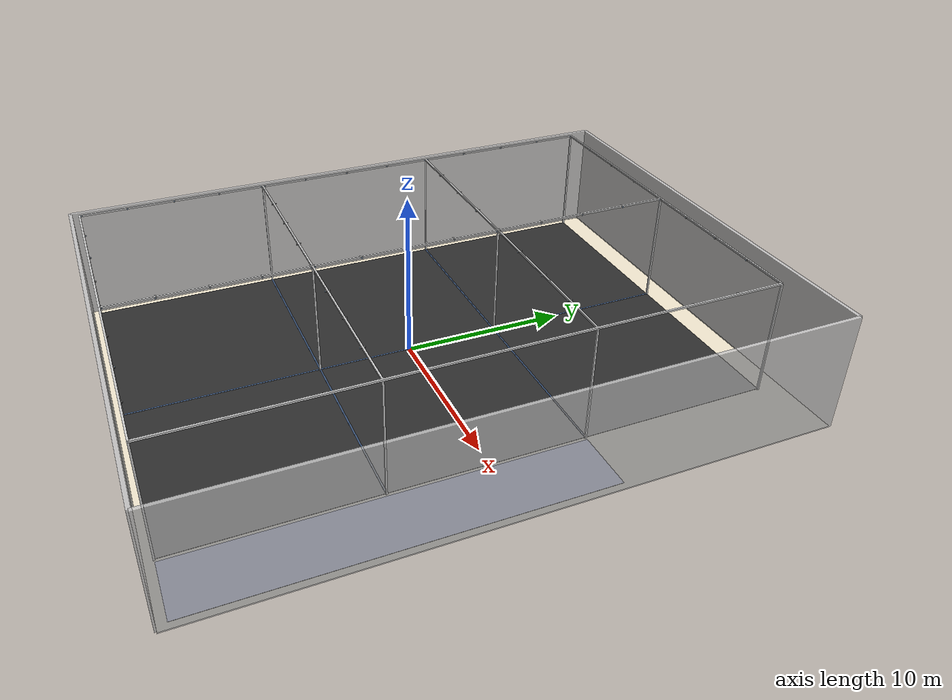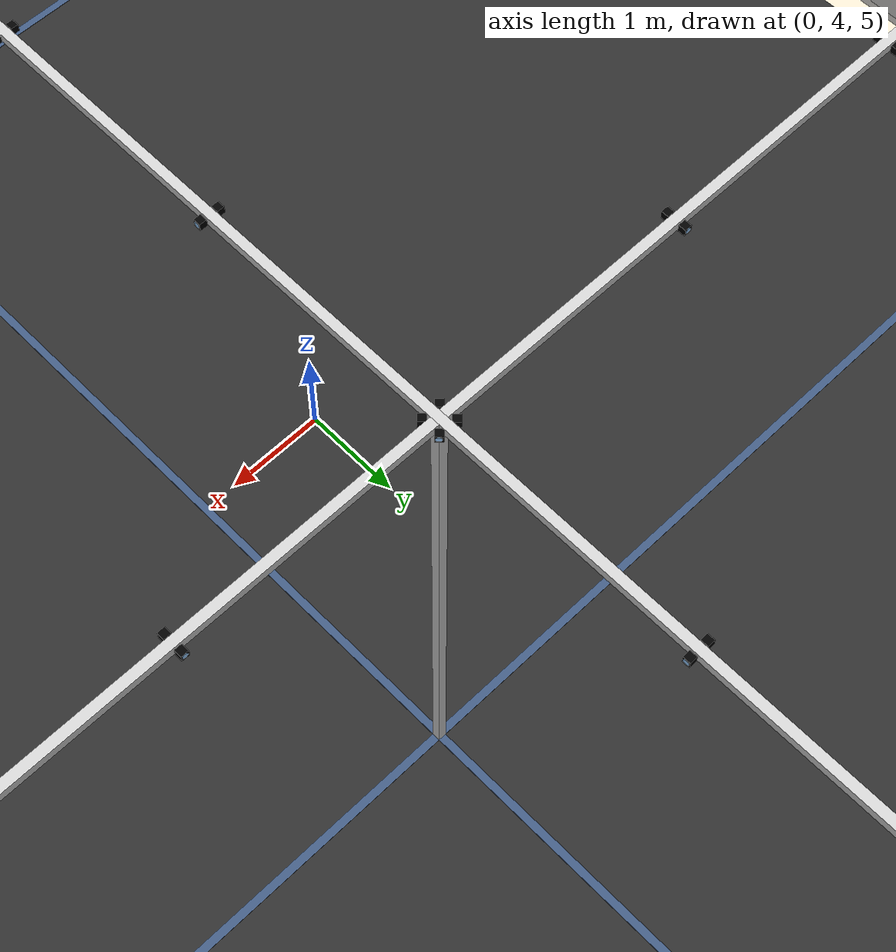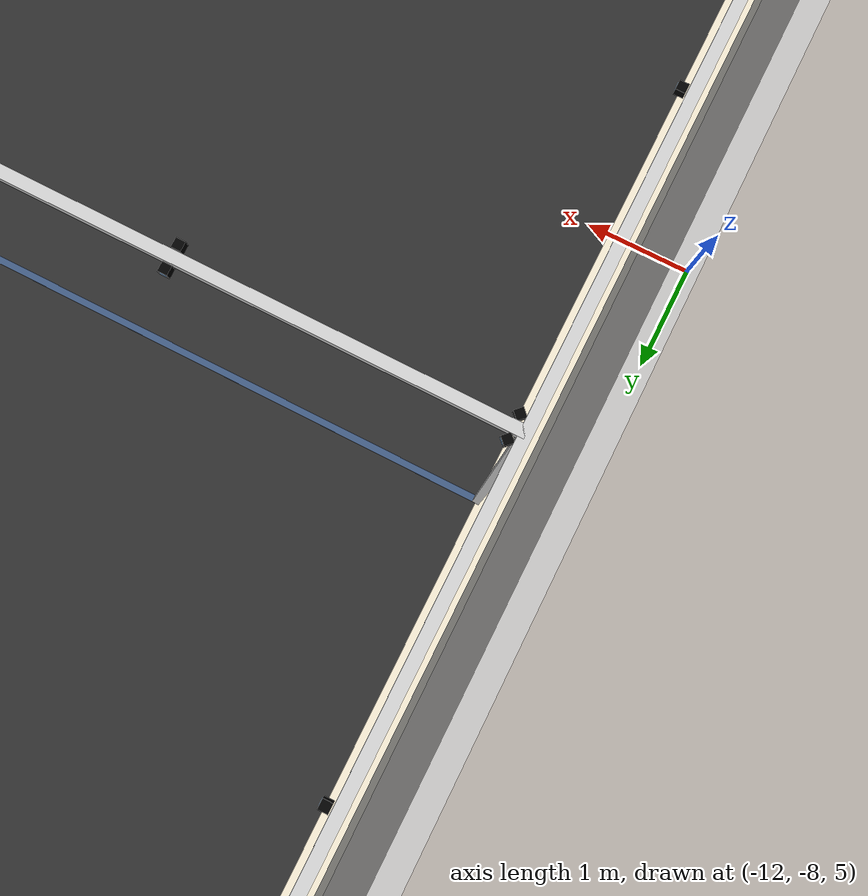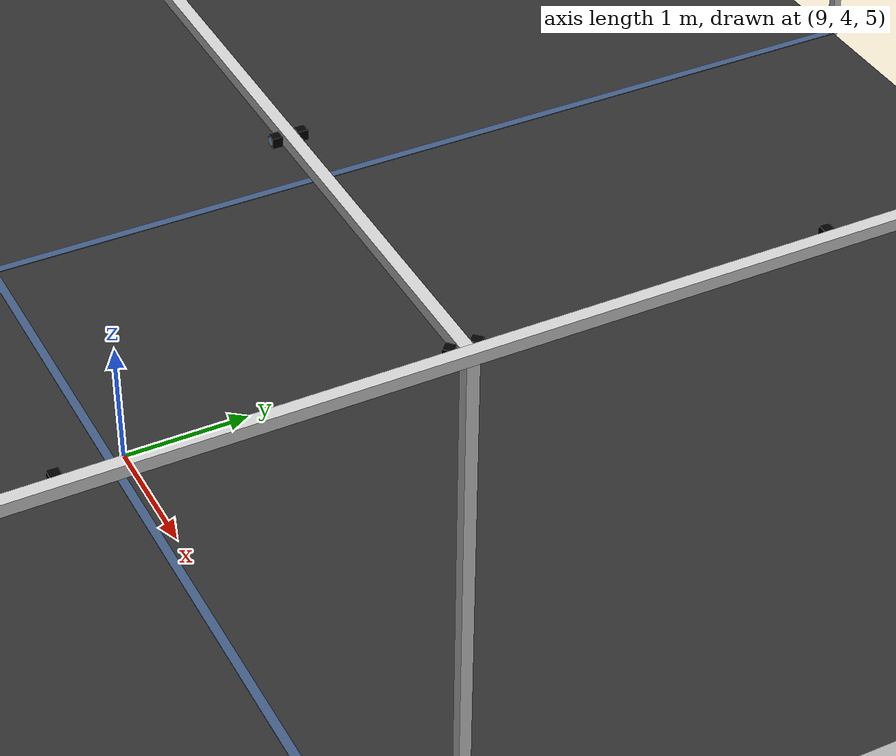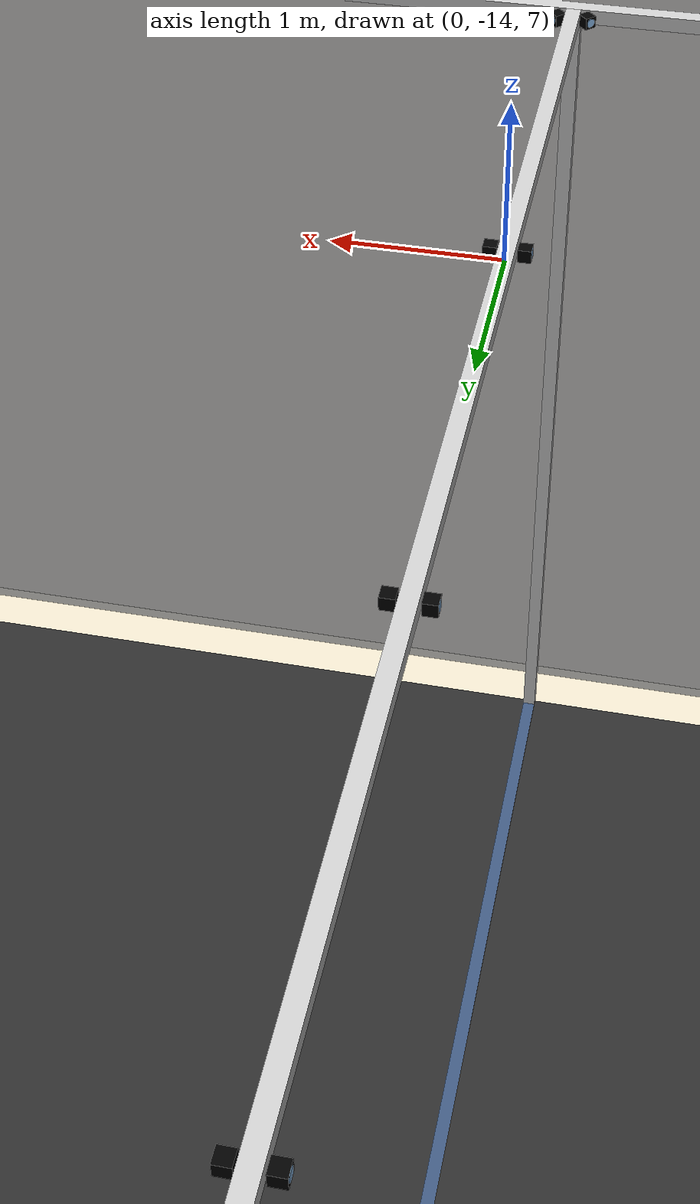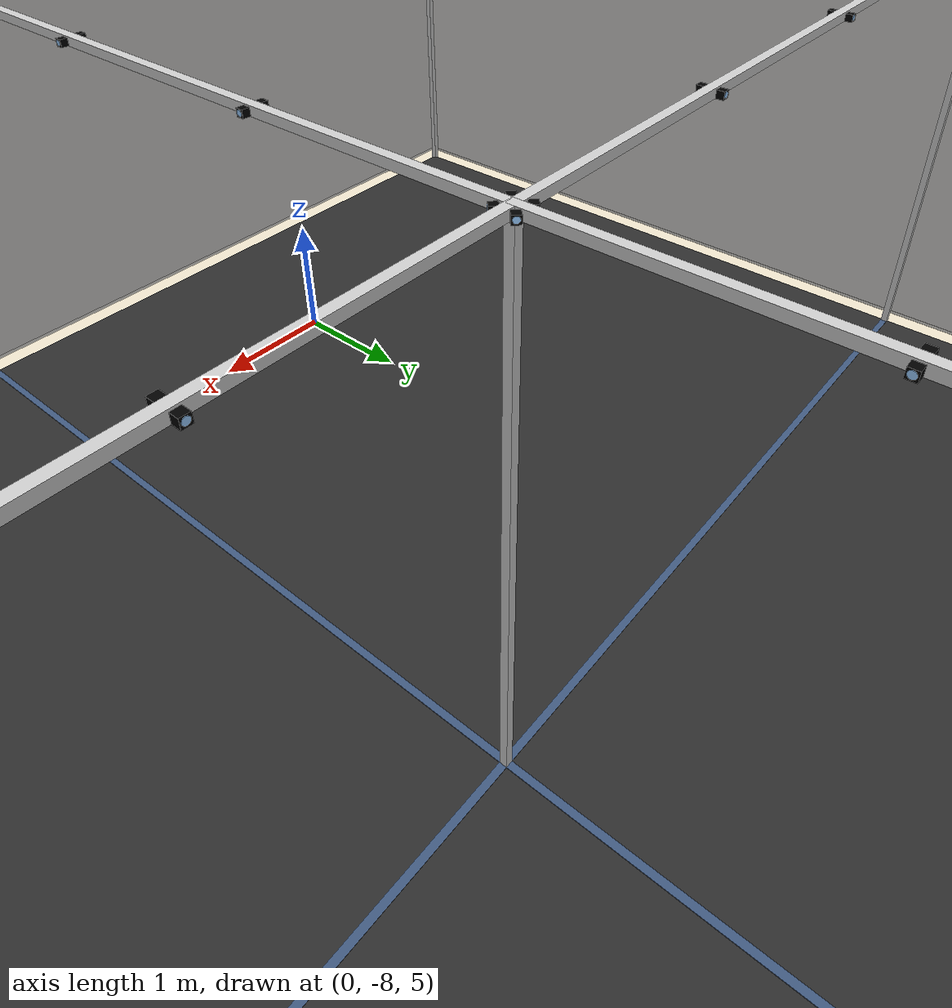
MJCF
<mujoco model="asu_drone_studio">
  <compiler angle="degree"/>
  <option gravity="0 0 -9.81" timestep="0.005"/>

  <default>
    <geom condim="3" friction="1 0.1 0.1"/>
    <default class="wall"><geom type="box" material="mat_brick" rgba="0.8 0.8 0.8 0.85"/></default>
    <default class="zone"><geom type="box" rgba="0.18 0.18 0.18 1"/></default>
    <default class="gridline"><geom type="box" rgba="0.25 0.35 0.5 1"/></default>
    <default class="truss"><geom type="box" rgba="0.8 0.8 0.8 1"/></default>
    <default class="cam_body"><geom type="box" size="0.04 0.04 0.04" rgba="0 0 0 1"/></default>
    <default class="cam_lens">
      <geom type="cylinder" size="0.03 0.001" pos="0.041 0 0" euler="0 90 0"
            rgba="0.6 0.8 1.0 1"/>
    </default>
  </default>

  <asset>
    <texture type="skybox" builtin="gradient" rgb1="0.9 0.9 0.95" rgb2="0.6 0.65 0.7"
             width="512" height="512"/>
    <texture name="tex_brick" type="2d" file="wall_brick.png"/>
    <material name="mat_brick" texture="tex_brick" texuniform="true"
              texrepeat="28 14" reflectance="0.1"/>
  </asset>

  <worldbody>
    <light directional="true" diffuse="0.9 0.9 0.9" specular="0.2 0.2 0.2"
           pos="0 0 7.0" dir="0 0 -1"/>

    <geom name="floor" type="plane" size="13.58 17.92 0.05" pos="1.8 0.5 0"
          rgba="0.93 0.89 0.8 1"/>
    <geom name="zone_a" class="zone" pos="-5.64 -11.28 0.051" size="5.64 5.64 0.01"/>
        <geom name="zone_b" class="zone" pos="5.64 -11.28 0.051" size="5.64 5.64 0.01"/>
        <geom name="zone_c" class="zone" pos="-5.64 0.0 0.051" size="5.64 5.64 0.01"/>
        <geom name="zone_d" class="zone" pos="5.64 0.0 0.051" size="5.64 5.64 0.01"/>
        <geom name="zone_e" class="zone" pos="-5.64 11.28 0.051" size="5.64 5.64 0.01"/>
        <geom name="zone_f" class="zone" pos="5.64 11.28 0.051" size="5.64 5.64 0.01"/>
    <geom name="grid_v"  class="gridline" pos="0 0 0.065"    size="0.05 16.919999999999998 0.005"/>
    <geom name="grid_h1" class="gridline" pos="0 -5.64 0.065" size="11.28 0.05 0.005"/>
    <geom name="grid_h2" class="gridline" pos="0 5.64 0.065"  size="11.28 0.05 0.005"/>

    <geom name="wall_n" class="wall" pos="1.8 18.42 3.5"  size="13.58 0.1 3.5"/>
    <geom name="wall_s" class="wall" pos="1.8 -17.42 3.5" size="13.58 0.1 3.5"/>
    <geom name="wall_w" class="wall" pos="-11.78 0.5 3.5" size="0.1 17.92 3.5"/>
    <geom name="wall_e" class="wall" pos="15.38 0.5 3.5"  size="0.1 17.92 3.5"/>
    <geom name="control_desk" type="box" pos="13.28 -5.64 0.055" size="1.8 11.28 0.01"
          rgba="0.65 0.7 1.0 1"/>

        <geom class="truss" pos="-11.28 -16.919999999999998 3.5" size="0.05 0.05 3.5"/>
    <geom class="truss" pos="-11.28 -5.64 3.5" size="0.05 0.05 3.5"/>
    <geom class="truss" pos="-11.28 5.64 3.5" size="0.05 0.05 3.5"/>
    <geom class="truss" pos="-11.28 16.919999999999998 3.5" size="0.05 0.05 3.5"/>
    <geom class="truss" pos="0.0 -16.919999999999998 3.5" size="0.05 0.05 3.5"/>
    <geom class="truss" pos="0.0 -5.64 3.5" size="0.05 0.05 3.5"/>
    <geom class="truss" pos="0.0 5.64 3.5" size="0.05 0.05 3.5"/>
    <geom class="truss" pos="0.0 16.919999999999998 3.5" size="0.05 0.05 3.5"/>
    <geom class="truss" pos="11.28 -16.919999999999998 3.5" size="0.05 0.05 3.5"/>
    <geom class="truss" pos="11.28 -5.64 3.5" size="0.05 0.05 3.5"/>
    <geom class="truss" pos="11.28 5.64 3.5" size="0.05 0.05 3.5"/>
    <geom class="truss" pos="11.28 16.919999999999998 3.5" size="0.05 0.05 3.5"/>
        <geom class="truss" pos="-11.28 0 7.0" size="0.05 16.919999999999998 0.05"/>
    <geom class="truss" pos="0.0 0 7.0" size="0.05 16.919999999999998 0.05"/>
    <geom class="truss" pos="11.28 0 7.0" size="0.05 16.919999999999998 0.05"/>
    <geom class="truss" pos="0 -16.919999999999998 7.0" size="11.28 0.05 0.05"/>
    <geom class="truss" pos="0 -5.64 7.0" size="11.28 0.05 0.05"/>
    <geom class="truss" pos="0 5.64 7.0" size="11.28 0.05 0.05"/>
    <geom class="truss" pos="0 16.919999999999998 7.0" size="11.28 0.05 0.05"/>

    <body pos="-11.18 -16.82 7.0" euler="0 0 45"><geom class="cam_body"/><geom class="cam_lens"/></body>
        <body pos="-0.10 -16.82 7.0" euler="0 0 135"><geom class="cam_body"/><geom class="cam_lens"/></body>
        <body pos="-0.10 -5.74 7.0" euler="0 0 225"><geom class="cam_body"/><geom class="cam_lens"/></body>
        <body pos="-11.18 -5.74 7.0" euler="0 0 315"><geom class="cam_body"/><geom class="cam_lens"/></body>
        <body pos="-8.46 -16.82 7.0" euler="0 0 90"><geom class="cam_body"/><geom class="cam_lens"/></body>
        <body pos="-8.46 -5.74 7.0" euler="0 0 270"><geom class="cam_body"/><geom class="cam_lens"/></body>
        <body pos="-11.18 -14.10 7.0" euler="0 0 0"><geom class="cam_body"/><geom class="cam_lens"/></body>
        <body pos="-0.10 -14.10 7.0" euler="0 0 180"><geom class="cam_body"/><geom class="cam_lens"/></body>
        <body pos="-5.64 -16.82 7.0" euler="0 0 90"><geom class="cam_body"/><geom class="cam_lens"/></body>
        <body pos="-5.64 -5.74 7.0" euler="0 0 270"><geom class="cam_body"/><geom class="cam_lens"/></body>
        <body pos="-11.18 -11.28 7.0" euler="0 0 0"><geom class="cam_body"/><geom class="cam_lens"/></body>
        <body pos="-0.10 -11.28 7.0" euler="0 0 180"><geom class="cam_body"/><geom class="cam_lens"/></body>
        <body pos="-2.82 -16.82 7.0" euler="0 0 90"><geom class="cam_body"/><geom class="cam_lens"/></body>
        <body pos="-2.82 -5.74 7.0" euler="0 0 270"><geom class="cam_body"/><geom class="cam_lens"/></body>
        <body pos="-11.18 -8.46 7.0" euler="0 0 0"><geom class="cam_body"/><geom class="cam_lens"/></body>
        <body pos="-0.10 -8.46 7.0" euler="0 0 180"><geom class="cam_body"/><geom class="cam_lens"/></body>
        <body pos="0.10 -16.82 7.0" euler="0 0 45"><geom class="cam_body"/><geom class="cam_lens"/></body>
        <body pos="11.18 -16.82 7.0" euler="0 0 135"><geom class="cam_body"/><geom class="cam_lens"/></body>
        <body pos="11.18 -5.74 7.0" euler="0 0 225"><geom class="cam_body"/><geom class="cam_lens"/></body>
        <body pos="0.10 -5.74 7.0" euler="0 0 315"><geom class="cam_body"/><geom class="cam_lens"/></body>
        <body pos="2.82 -16.82 7.0" euler="0 0 90"><geom class="cam_body"/><geom class="cam_lens"/></body>
        <body pos="2.82 -5.74 7.0" euler="0 0 270"><geom class="cam_body"/><geom class="cam_lens"/></body>
        <body pos="0.10 -14.10 7.0" euler="0 0 0"><geom class="cam_body"/><geom class="cam_lens"/></body>
        <body pos="11.18 -14.10 7.0" euler="0 0 180"><geom class="cam_body"/><geom class="cam_lens"/></body>
        <body pos="5.64 -16.82 7.0" euler="0 0 90"><geom class="cam_body"/><geom class="cam_lens"/></body>
        <body pos="5.64 -5.74 7.0" euler="0 0 270"><geom class="cam_body"/><geom class="cam_lens"/></body>
        <body pos="0.10 -11.28 7.0" euler="0 0 0"><geom class="cam_body"/><geom class="cam_lens"/></body>
        <body pos="11.18 -11.28 7.0" euler="0 0 180"><geom class="cam_body"/><geom class="cam_lens"/></body>
        <body pos="8.46 -16.82 7.0" euler="0 0 90"><geom class="cam_body"/><geom class="cam_lens"/></body>
        <body pos="8.46 -5.74 7.0" euler="0 0 270"><geom class="cam_body"/><geom class="cam_lens"/></body>
        <body pos="0.10 -8.46 7.0" euler="0 0 0"><geom class="cam_body"/><geom class="cam_lens"/></body>
        <body pos="11.18 -8.46 7.0" euler="0 0 180"><geom class="cam_body"/><geom class="cam_lens"/></body>
        <body pos="-11.18 -5.54 7.0" euler="0 0 45"><geom class="cam_body"/><geom class="cam_lens"/></body>
        <body pos="-0.10 -5.54 7.0" euler="0 0 135"><geom class="cam_body"/><geom class="cam_lens"/></body>
        <body pos="-0.10 5.54 7.0" euler="0 0 225"><geom class="cam_body"/><geom class="cam_lens"/></body>
        <body pos="-11.18 5.54 7.0" euler="0 0 315"><geom class="cam_body"/><geom class="cam_lens"/></body>
        <body pos="-8.46 -5.54 7.0" euler="0 0 90"><geom class="cam_body"/><geom class="cam_lens"/></body>
        <body pos="-8.46 5.54 7.0" euler="0 0 270"><geom class="cam_body"/><geom class="cam_lens"/></body>
        <body pos="-11.18 -2.82 7.0" euler="0 0 0"><geom class="cam_body"/><geom class="cam_lens"/></body>
        <body pos="-0.10 -2.82 7.0" euler="0 0 180"><geom class="cam_body"/><geom class="cam_lens"/></body>
        <body pos="-5.64 -5.54 7.0" euler="0 0 90"><geom class="cam_body"/><geom class="cam_lens"/></body>
        <body pos="-5.64 5.54 7.0" euler="0 0 270"><geom class="cam_body"/><geom class="cam_lens"/></body>
        <body pos="-11.18 0.00 7.0" euler="0 0 0"><geom class="cam_body"/><geom class="cam_lens"/></body>
        <body pos="-0.10 0.00 7.0" euler="0 0 180"><geom class="cam_body"/><geom class="cam_lens"/></body>
        <body pos="-2.82 -5.54 7.0" euler="0 0 90"><geom class="cam_body"/><geom class="cam_lens"/></body>
        <body pos="-2.82 5.54 7.0" euler="0 0 270"><geom class="cam_body"/><geom class="cam_lens"/></body>
        <body pos="-11.18 2.82 7.0" euler="0 0 0"><geom class="cam_body"/><geom class="cam_lens"/></body>
        <body pos="-0.10 2.82 7.0" euler="0 0 180"><geom class="cam_body"/><geom class="cam_lens"/></body>
        <body pos="0.10 -5.54 7.0" euler="0 0 45"><geom class="cam_body"/><geom class="cam_lens"/></body>
        <body pos="11.18 -5.54 7.0" euler="0 0 135"><geom class="cam_body"/><geom class="cam_lens"/></body>
        <body pos="11.18 5.54 7.0" euler="0 0 225"><geom class="cam_body"/><geom class="cam_lens"/></body>
        <body pos="0.10 5.54 7.0" euler="0 0 315"><geom class="cam_body"/><geom class="cam_lens"/></body>
        <body pos="2.82 -5.54 7.0" euler="0 0 90"><geom class="cam_body"/><geom class="cam_lens"/></body>
        <body pos="2.82 5.54 7.0" euler="0 0 270"><geom class="cam_body"/><geom class="cam_lens"/></body>
        <body pos="0.10 -2.82 7.0" euler="0 0 0"><geom class="cam_body"/><geom class="cam_lens"/></body>
        <body pos="11.18 -2.82 7.0" euler="0 0 180"><geom class="cam_body"/><geom class="cam_lens"/></body>
        <body pos="5.64 -5.54 7.0" euler="0 0 90"><geom class="cam_body"/><geom class="cam_lens"/></body>
        <body pos="5.64 5.54 7.0" euler="0 0 270"><geom class="cam_body"/><geom class="cam_lens"/></body>
        <body pos="0.10 0.00 7.0" euler="0 0 0"><geom class="cam_body"/><geom class="cam_lens"/></body>
        <body pos="11.18 0.00 7.0" euler="0 0 180"><geom class="cam_body"/><geom class="cam_lens"/></body>
        <body pos="8.46 -5.54 7.0" euler="0 0 90"><geom class="cam_body"/><geom class="cam_lens"/></body>
        <body pos="8.46 5.54 7.0" euler="0 0 270"><geom class="cam_body"/><geom class="cam_lens"/></body>
        <body pos="0.10 2.82 7.0" euler="0 0 0"><geom class="cam_body"/><geom class="cam_lens"/></body>
        <body pos="11.18 2.82 7.0" euler="0 0 180"><geom class="cam_body"/><geom class="cam_lens"/></body>
        <body pos="-11.18 5.74 7.0" euler="0 0 45"><geom class="cam_body"/><geom class="cam_lens"/></body>
        <body pos="-0.10 5.74 7.0" euler="0 0 135"><geom class="cam_body"/><geom class="cam_lens"/></body>
        <body pos="-0.10 16.82 7.0" euler="0 0 225"><geom class="cam_body"/><geom class="cam_lens"/></body>
        <body pos="-11.18 16.82 7.0" euler="0 0 315"><geom class="cam_body"/><geom class="cam_lens"/></body>
        <body pos="-8.46 5.74 7.0" euler="0 0 90"><geom class="cam_body"/><geom class="cam_lens"/></body>
        <body pos="-8.46 16.82 7.0" euler="0 0 270"><geom class="cam_body"/><geom class="cam_lens"/></body>
        <body pos="-11.18 8.46 7.0" euler="0 0 0"><geom class="cam_body"/><geom class="cam_lens"/></body>
        <body pos="-0.10 8.46 7.0" euler="0 0 180"><geom class="cam_body"/><geom class="cam_lens"/></body>
        <body pos="-5.64 5.74 7.0" euler="0 0 90"><geom class="cam_body"/><geom class="cam_lens"/></body>
        <body pos="-5.64 16.82 7.0" euler="0 0 270"><geom class="cam_body"/><geom class="cam_lens"/></body>
        <body pos="-11.18 11.28 7.0" euler="0 0 0"><geom class="cam_body"/><geom class="cam_lens"/></body>
        <body pos="-0.10 11.28 7.0" euler="0 0 180"><geom class="cam_body"/><geom class="cam_lens"/></body>
        <body pos="-2.82 5.74 7.0" euler="0 0 90"><geom class="cam_body"/><geom class="cam_lens"/></body>
        <body pos="-2.82 16.82 7.0" euler="0 0 270"><geom class="cam_body"/><geom class="cam_lens"/></body>
        <body pos="-11.18 14.10 7.0" euler="0 0 0"><geom class="cam_body"/><geom class="cam_lens"/></body>
        <body pos="-0.10 14.10 7.0" euler="0 0 180"><geom class="cam_body"/><geom class="cam_lens"/></body>
        <body pos="0.10 5.74 7.0" euler="0 0 45"><geom class="cam_body"/><geom class="cam_lens"/></body>
        <body pos="11.18 5.74 7.0" euler="0 0 135"><geom class="cam_body"/><geom class="cam_lens"/></body>
        <body pos="11.18 16.82 7.0" euler="0 0 225"><geom class="cam_body"/><geom class="cam_lens"/></body>
        <body pos="0.10 16.82 7.0" euler="0 0 315"><geom class="cam_body"/><geom class="cam_lens"/></body>
        <body pos="2.82 5.74 7.0" euler="0 0 90"><geom class="cam_body"/><geom class="cam_lens"/></body>
        <body pos="2.82 16.82 7.0" euler="0 0 270"><geom class="cam_body"/><geom class="cam_lens"/></body>
        <body pos="0.10 8.46 7.0" euler="0 0 0"><geom class="cam_body"/><geom class="cam_lens"/></body>
        <body pos="11.18 8.46 7.0" euler="0 0 180"><geom class="cam_body"/><geom class="cam_lens"/></body>
        <body pos="5.64 5.74 7.0" euler="0 0 90"><geom class="cam_body"/><geom class="cam_lens"/></body>
        <body pos="5.64 16.82 7.0" euler="0 0 270"><geom class="cam_body"/><geom class="cam_lens"/></body>
        <body pos="0.10 11.28 7.0" euler="0 0 0"><geom class="cam_body"/><geom class="cam_lens"/></body>
        <body pos="11.18 11.28 7.0" euler="0 0 180"><geom class="cam_body"/><geom class="cam_lens"/></body>
        <body pos="8.46 5.74 7.0" euler="0 0 90"><geom class="cam_body"/><geom class="cam_lens"/></body>
        <body pos="8.46 16.82 7.0" euler="0 0 270"><geom class="cam_body"/><geom class="cam_lens"/></body>
        <body pos="0.10 14.10 7.0" euler="0 0 0"><geom class="cam_body"/><geom class="cam_lens"/></body>
        <body pos="11.18 14.10 7.0" euler="0 0 180"><geom class="cam_body"/><geom class="cam_lens"/></body>
  </worldbody>
</mujoco>
